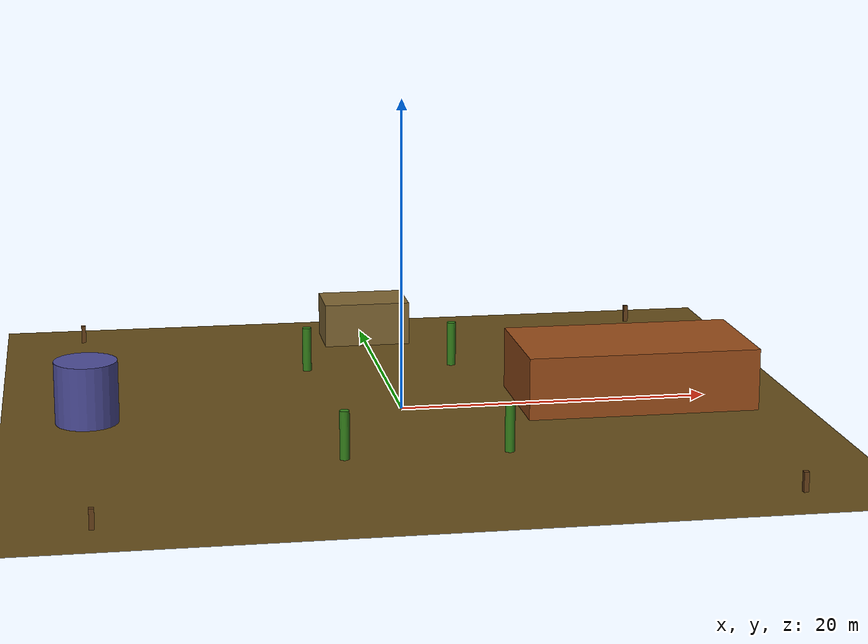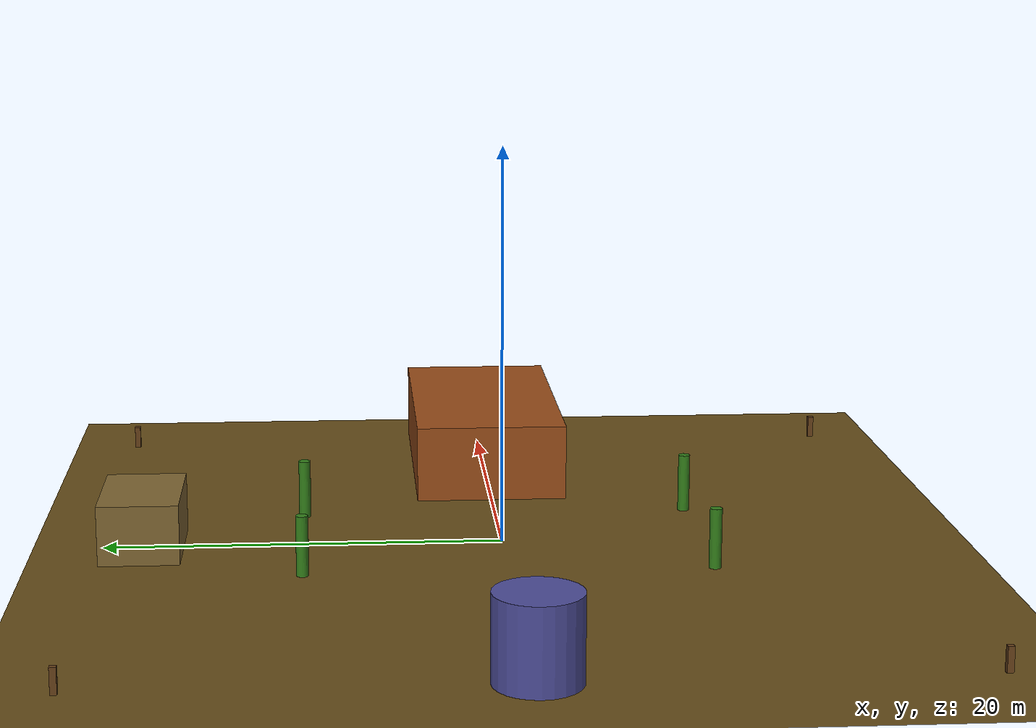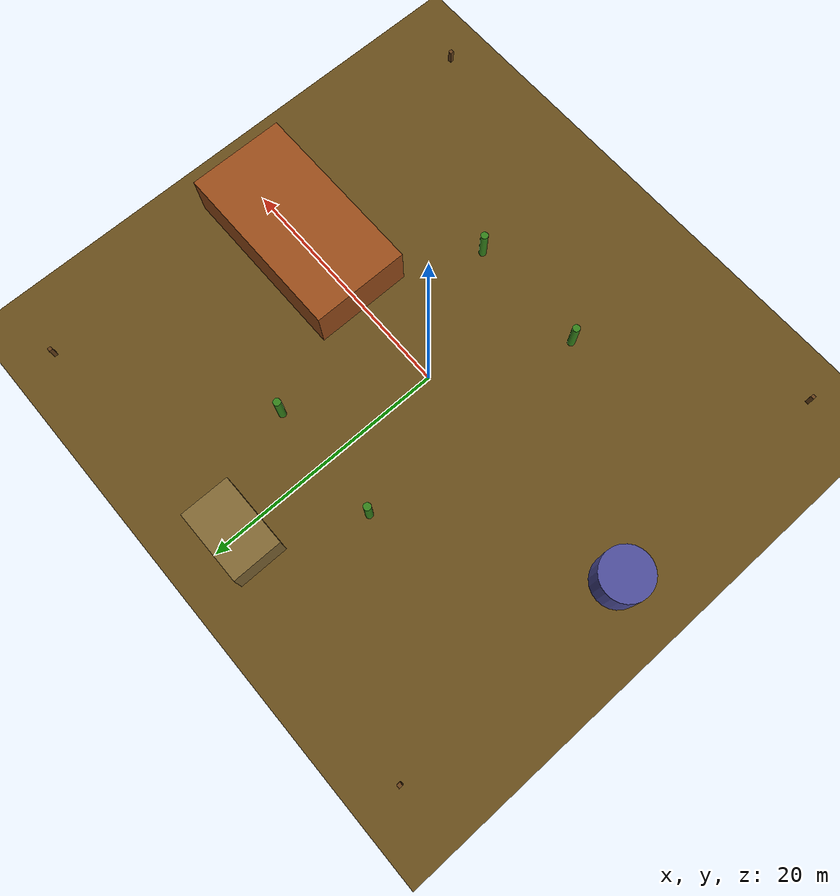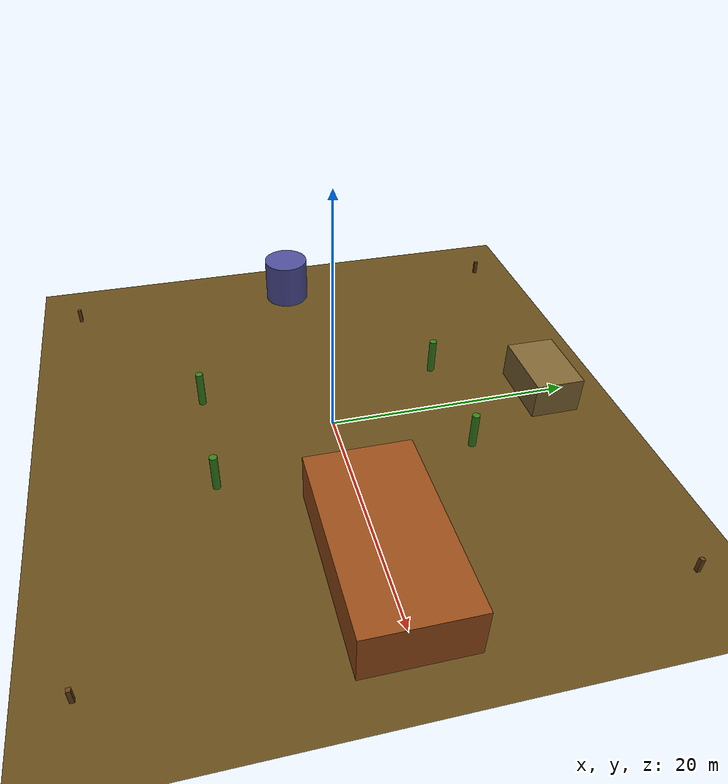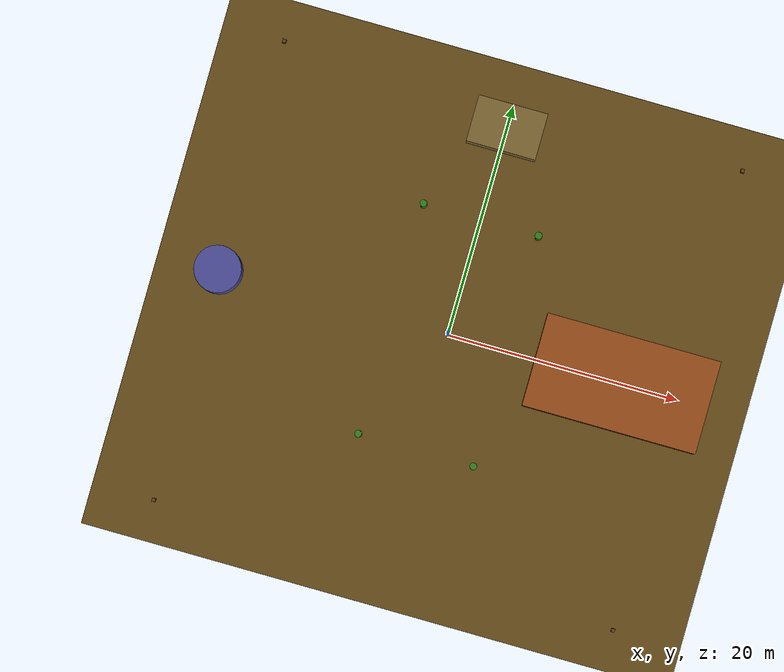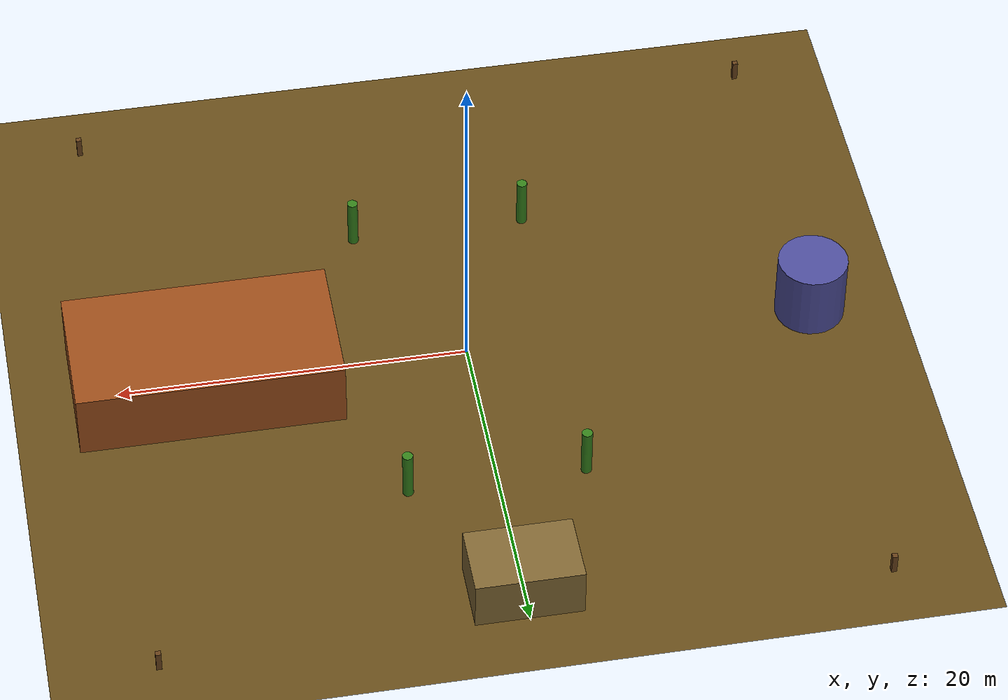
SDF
<?xml version="1.0" ?>
<sdf version="1.9">
  <world name="outdoor_farm">

    <physics name="1ms" type="ignored">
      <max_step_size>0.001</max_step_size>
      <real_time_factor>1.0</real_time_factor>
    </physics>

    <plugin filename="ignition-gazebo-physics-system"
            name="ignition::gazebo::systems::Physics"/>
    <plugin filename="ignition-gazebo-user-commands-system"
            name="ignition::gazebo::systems::UserCommands"/>
    <plugin filename="ignition-gazebo-scene-broadcaster-system"
            name="ignition::gazebo::systems::SceneBroadcaster"/>
    <plugin filename="ignition-gazebo-sensors-system"
            name="ignition::gazebo::systems::Sensors">
      <render_engine>ogre2</render_engine>
    </plugin>
    <plugin filename="ignition-gazebo-imu-system"
            name="ignition::gazebo::systems::Imu"/>

    <light name="sun" type="directional">
      <cast_shadows>true</cast_shadows>
      <pose>0 0 10 0 0 0</pose>
      <diffuse>0.8 0.8 0.8 1</diffuse>
      <specular>0.2 0.2 0.2 1</specular>
      <direction>-0.5 0.1 -0.9</direction>
    </light>

    <!-- Ground -->
    <model name="ground_plane">
      <static>true</static>
      <link name="link">
        <collision name="collision">
          <geometry><plane><normal>0 0 1</normal><size>200 200</size></plane></geometry>
        </collision>
        <visual name="visual">
          <geometry><plane><normal>0 0 1</normal><size>200 200</size></plane></geometry>
          <material><ambient>0.4 0.3 0.1 1</ambient><diffuse>0.4 0.3 0.1 1</diffuse></material>
        </visual>
      </link>
    </model>

    <!-- Barn — large planar features for LIO-SAM -->
    <model name="barn">
      <static>true</static>
      <pose>15 0 2 0 0 0</pose>
      <link name="link">
        <collision name="collision"><geometry><box><size>15 8 4</size></box></geometry></collision>
        <visual name="visual"><geometry><box><size>15 8 4</size></box></geometry>
          <material><ambient>0.6 0.3 0.1 1</ambient></material></visual>
      </link>
    </model>

    <!-- Water tank — cylindrical landmark for loop closure -->
    <model name="water_tank">
      <static>true</static>
      <pose>-20 0 2 0 0 0</pose>
      <link name="link">
        <collision name="collision"><geometry><cylinder><radius>2.0</radius><length>4.0</length></cylinder></geometry></collision>
        <visual name="visual"><geometry><cylinder><radius>2.0</radius><length>4.0</length></cylinder></geometry>
          <material><ambient>0.3 0.3 0.6 1</ambient></material></visual>
      </link>
    </model>

    <!-- 4 corner fence posts — edge features -->
    <model name="post_ne"><static>true</static><pose>20 20 0.6 0 0 0</pose><link name="link">
      <collision name="c"><geometry><box><size>0.3 0.3 1.2</size></box></geometry></collision>
      <visual name="v"><geometry><box><size>0.3 0.3 1.2</size></box></geometry>
        <material><ambient>0.4 0.25 0.1 1</ambient></material></visual></link></model>

    <model name="post_nw"><static>true</static><pose>-20 20 0.6 0 0 0</pose><link name="link">
      <collision name="c"><geometry><box><size>0.3 0.3 1.2</size></box></geometry></collision>
      <visual name="v"><geometry><box><size>0.3 0.3 1.2</size></box></geometry>
        <material><ambient>0.4 0.25 0.1 1</ambient></material></visual></link></model>

    <model name="post_se"><static>true</static><pose>20 -20 0.6 0 0 0</pose><link name="link">
      <collision name="c"><geometry><box><size>0.3 0.3 1.2</size></box></geometry></collision>
      <visual name="v"><geometry><box><size>0.3 0.3 1.2</size></box></geometry>
        <material><ambient>0.4 0.25 0.1 1</ambient></material></visual></link></model>

    <model name="post_sw"><static>true</static><pose>-20 -20 0.6 0 0 0</pose><link name="link">
      <collision name="c"><geometry><box><size>0.3 0.3 1.2</size></box></geometry></collision>
      <visual name="v"><geometry><box><size>0.3 0.3 1.2</size></box></geometry>
        <material><ambient>0.4 0.25 0.1 1</ambient></material></visual></link></model>

    <!-- 4 trees — cylindrical edge features -->
    <model name="tree_a"><static>true</static><pose>5 10 1.5 0 0 0</pose><link name="link">
      <collision name="c"><geometry><cylinder><radius>0.3</radius><length>3.0</length></cylinder></geometry></collision>
      <visual name="v"><geometry><cylinder><radius>0.3</radius><length>3.0</length></cylinder></geometry>
        <material><ambient>0.2 0.5 0.1 1</ambient></material></visual></link></model>

    <model name="tree_b"><static>true</static><pose>5 -10 1.5 0 0 0</pose><link name="link">
      <collision name="c"><geometry><cylinder><radius>0.3</radius><length>3.0</length></cylinder></geometry></collision>
      <visual name="v"><geometry><cylinder><radius>0.3</radius><length>3.0</length></cylinder></geometry>
        <material><ambient>0.2 0.5 0.1 1</ambient></material></visual></link></model>

    <model name="tree_c"><static>true</static><pose>-5 10 1.5 0 0 0</pose><link name="link">
      <collision name="c"><geometry><cylinder><radius>0.3</radius><length>3.0</length></cylinder></geometry></collision>
      <visual name="v"><geometry><cylinder><radius>0.3</radius><length>3.0</length></cylinder></geometry>
        <material><ambient>0.2 0.5 0.1 1</ambient></material></visual></link></model>

    <model name="tree_d"><static>true</static><pose>-5 -10 1.5 0 0 0</pose><link name="link">
      <collision name="c"><geometry><cylinder><radius>0.3</radius><length>3.0</length></cylinder></geometry></collision>
      <visual name="v"><geometry><cylinder><radius>0.3</radius><length>3.0</length></cylinder></geometry>
        <material><ambient>0.2 0.5 0.1 1</ambient></material></visual></link></model>

    <!-- Shed -->
    <model name="shed"><static>true</static><pose>0 18 1.5 0 0 0</pose><link name="link">
      <collision name="collision"><geometry><box><size>6 4 3</size></box></geometry></collision>
      <visual name="visual"><geometry><box><size>6 4 3</size></box></geometry>
        <material><ambient>0.5 0.4 0.2 1</ambient></material></visual></link></model>

  </world>
</sdf>
